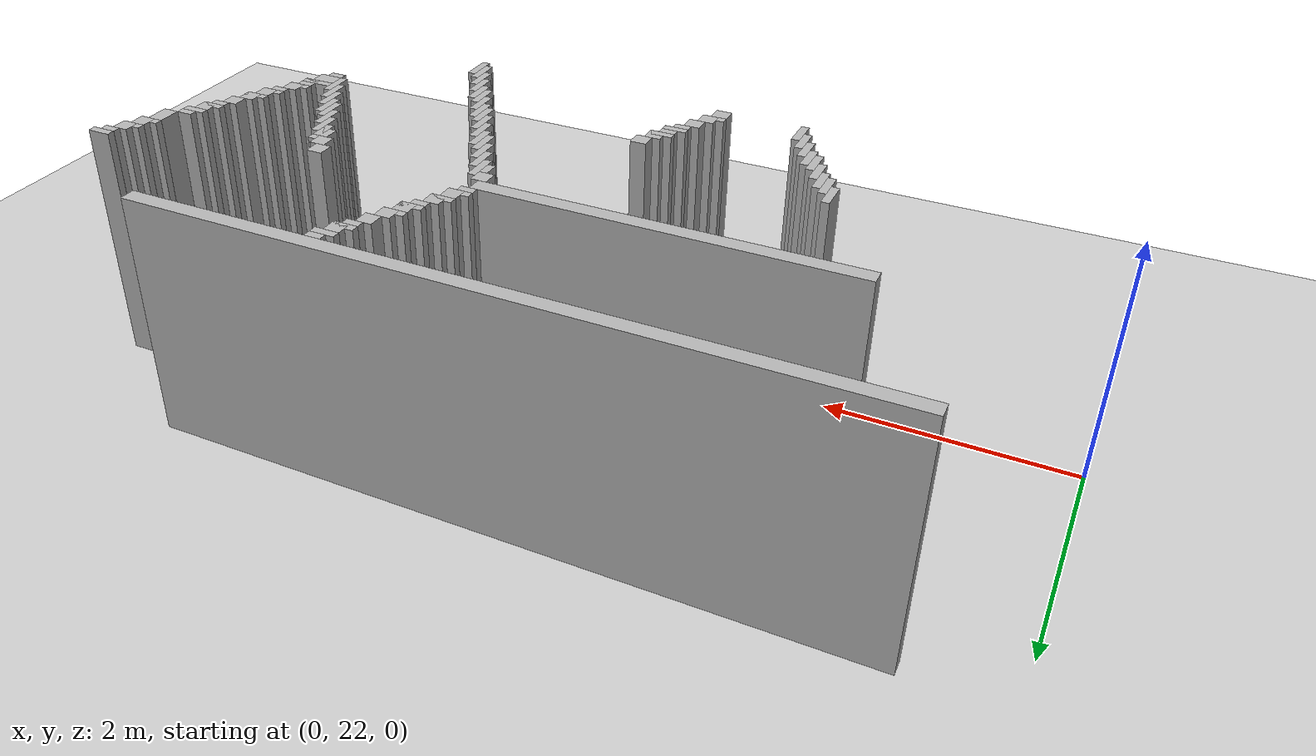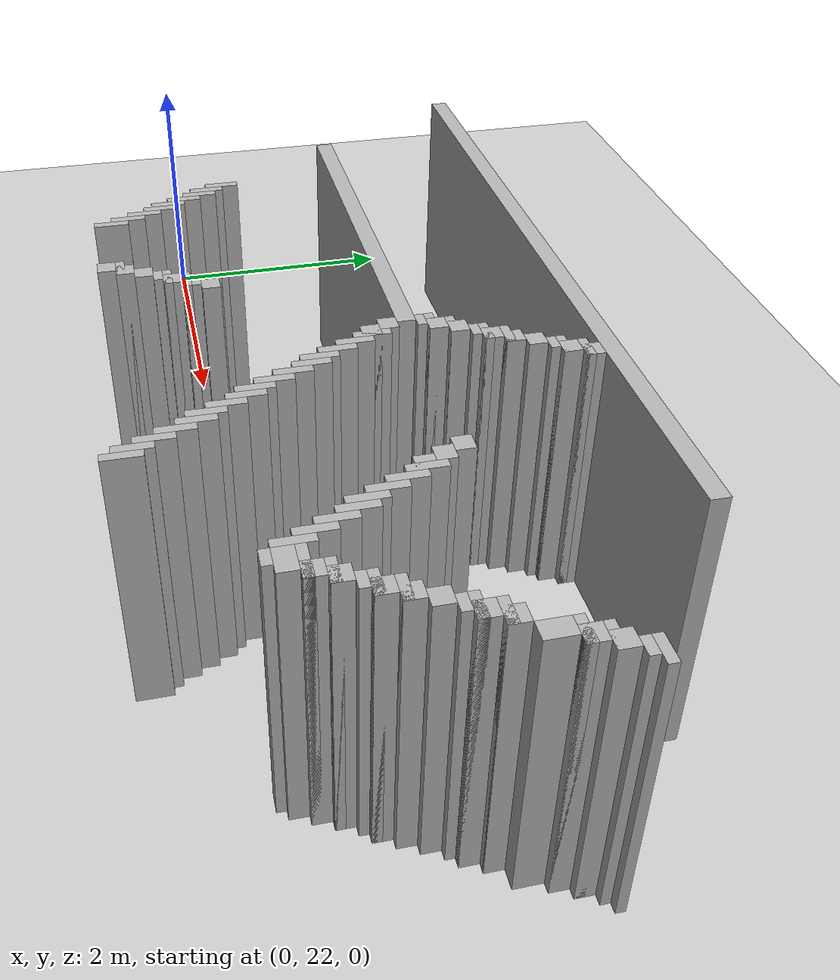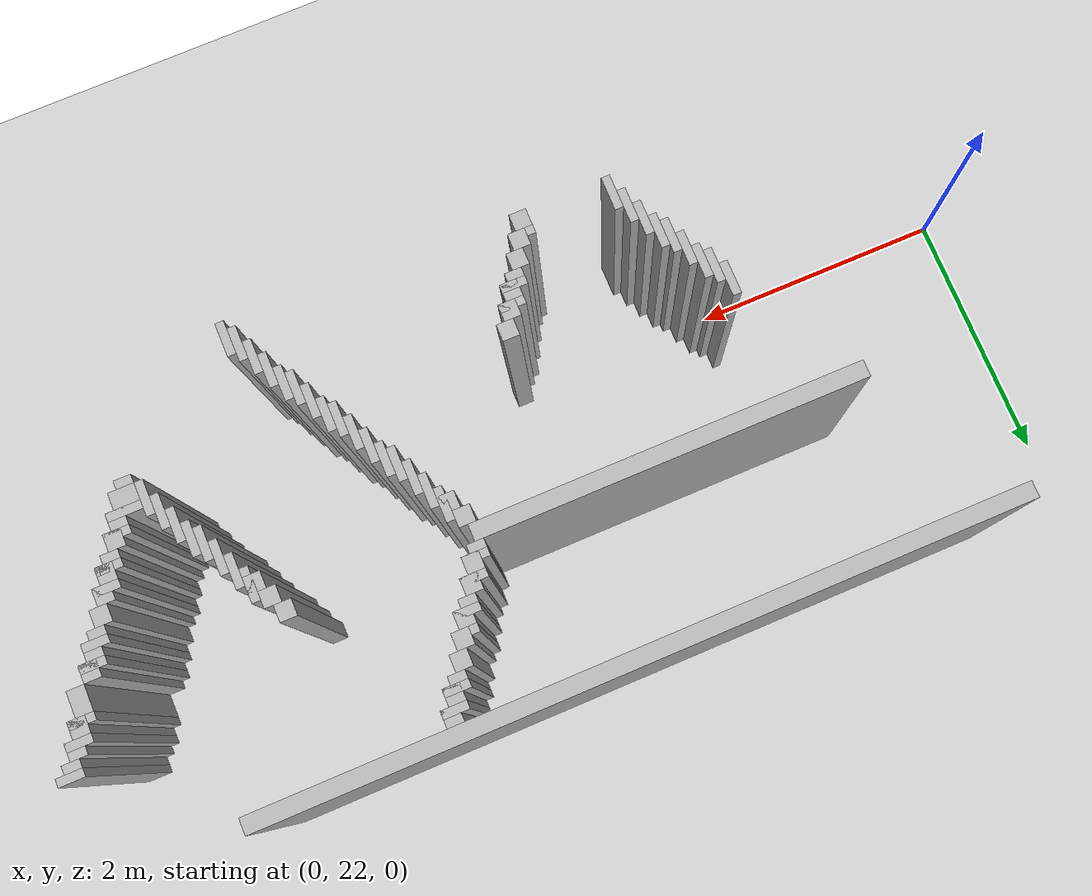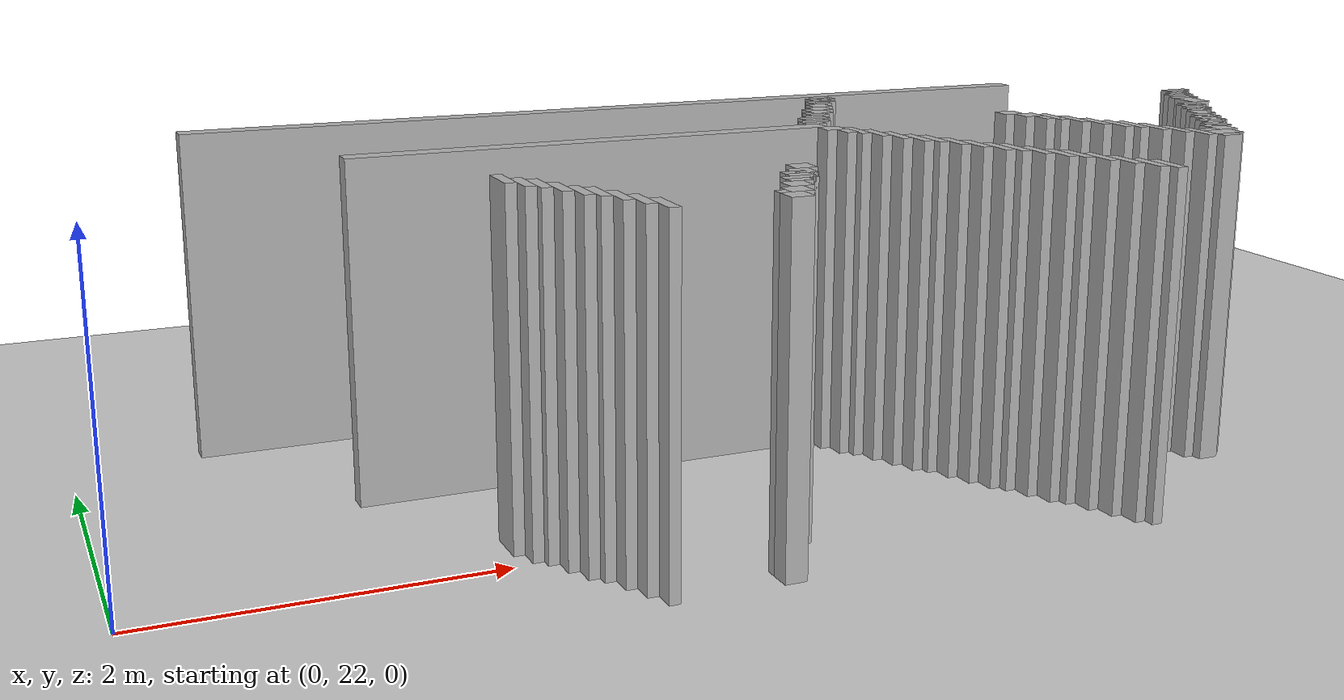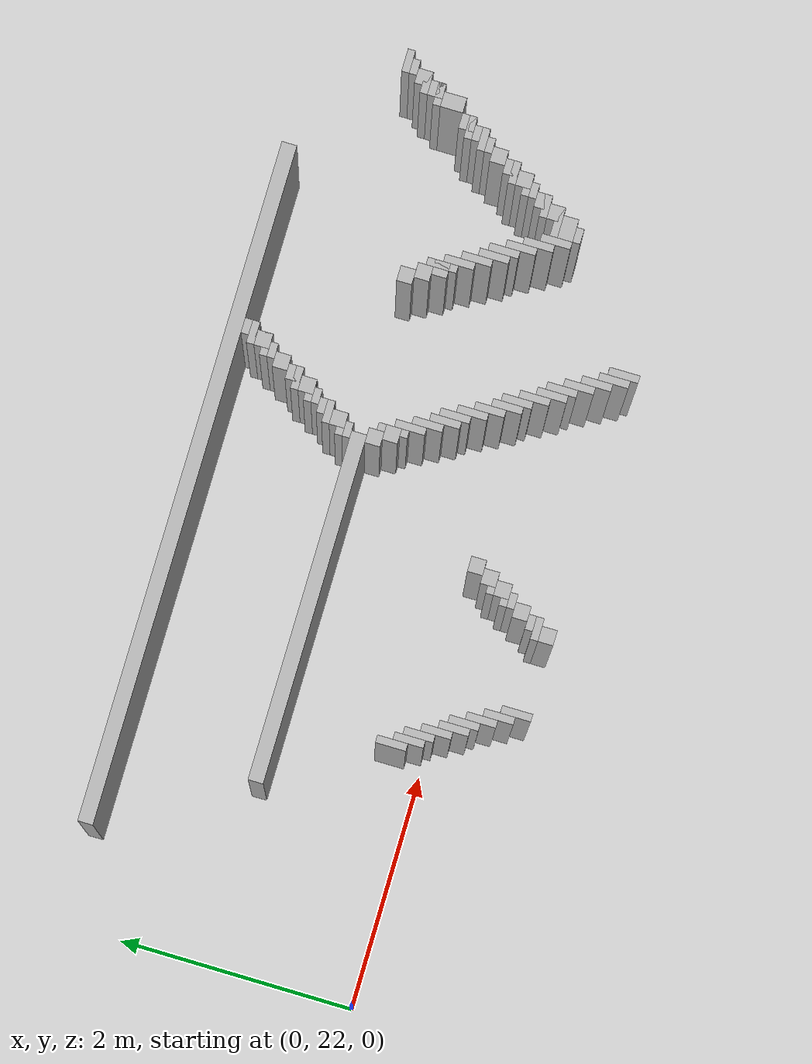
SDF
<sdf version="1.6">
 <world name="slam_world">
  <model name="ground_plane">
   <static>true</static>
   <link name="link">
    <collision name="collision">
     <geometry><plane><normal>0 0 1</normal><size>100 100</size></plane></geometry>
    </collision>
    <visual name="visual">
     <geometry><plane><normal>0 0 1</normal><size>100 100</size></plane></geometry>
     <material>
      <ambient>0.8 0.8 0.8 1</ambient>
      <diffuse>0.8 0.8 0.8 1</diffuse>
      <specular>0.8 0.8 0.8 1</specular>
     </material>
    </visual>
   </link>
  </model>
  <model name="wall_0">
   <static>true</static>
   <pose>3.6382978723404253 24.446808510638295 1.0 0 0 0</pose>
   <link name="link">
    <collision name="collision">
     <geometry><box><size>5.744680851063829 0.1276595744680851 2.0</size></box></geometry>
    </collision>
    <visual name="visual">
     <geometry><box><size>5.744680851063829 0.1276595744680851 2.0</size></box></geometry>
     <material><ambient>0.5 0.5 0.5 1</ambient><diffuse>0.7 0.7 0.7 1</diffuse></material>
    </visual>
   </link>
  </model>
  <model name="wall_3">
   <static>true</static>
   <pose>4.978723404255319 24.319148936170212 1.0 0 0 0</pose>
   <link name="link">
    <collision name="collision">
     <geometry><box><size>0.1276595744680851 0.1276595744680851 2.0</size></box></geometry>
    </collision>
    <visual name="visual">
     <geometry><box><size>0.1276595744680851 0.1276595744680851 2.0</size></box></geometry>
     <material><ambient>0.5 0.5 0.5 1</ambient><diffuse>0.7 0.7 0.7 1</diffuse></material>
    </visual>
   </link>
  </model>
  <model name="wall_8">
   <static>true</static>
   <pose>4.946808510638298 24.28723404255319 1.0 0 0 0</pose>
   <link name="link">
    <collision name="collision">
     <geometry><box><size>0.19148936170212766 0.06382978723404255 2.0</size></box></geometry>
    </collision>
    <visual name="visual">
     <geometry><box><size>0.19148936170212766 0.06382978723404255 2.0</size></box></geometry>
     <material><ambient>0.5 0.5 0.5 1</ambient><diffuse>0.7 0.7 0.7 1</diffuse></material>
    </visual>
   </link>
  </model>
  <model name="wall_13">
   <static>true</static>
   <pose>4.914893617021276 24.191489361702125 1.0 0 0 0</pose>
   <link name="link">
    <collision name="collision">
     <geometry><box><size>0.1276595744680851 0.1276595744680851 2.0</size></box></geometry>
    </collision>
    <visual name="visual">
     <geometry><box><size>0.1276595744680851 0.1276595744680851 2.0</size></box></geometry>
     <material><ambient>0.5 0.5 0.5 1</ambient><diffuse>0.7 0.7 0.7 1</diffuse></material>
    </visual>
   </link>
  </model>
  <model name="wall_18">
   <static>true</static>
   <pose>4.882978723404255 24.159574468085104 1.0 0 0 0</pose>
   <link name="link">
    <collision name="collision">
     <geometry><box><size>0.19148936170212766 0.06382978723404255 2.0</size></box></geometry>
    </collision>
    <visual name="visual">
     <geometry><box><size>0.19148936170212766 0.06382978723404255 2.0</size></box></geometry>
     <material><ambient>0.5 0.5 0.5 1</ambient><diffuse>0.7 0.7 0.7 1</diffuse></material>
    </visual>
   </link>
  </model>
  <model name="wall_23">
   <static>true</static>
   <pose>4.8510638297872335 24.095744680851062 1.0 0 0 0</pose>
   <link name="link">
    <collision name="collision">
     <geometry><box><size>0.1276595744680851 0.06382978723404255 2.0</size></box></geometry>
    </collision>
    <visual name="visual">
     <geometry><box><size>0.1276595744680851 0.06382978723404255 2.0</size></box></geometry>
     <material><ambient>0.5 0.5 0.5 1</ambient><diffuse>0.7 0.7 0.7 1</diffuse></material>
    </visual>
   </link>
  </model>
  <model name="wall_27">
   <static>true</static>
   <pose>4.787234042553191 23.999999999999996 1.0 0 0 0</pose>
   <link name="link">
    <collision name="collision">
     <geometry><box><size>0.1276595744680851 0.1276595744680851 2.0</size></box></geometry>
    </collision>
    <visual name="visual">
     <geometry><box><size>0.1276595744680851 0.1276595744680851 2.0</size></box></geometry>
     <material><ambient>0.5 0.5 0.5 1</ambient><diffuse>0.7 0.7 0.7 1</diffuse></material>
    </visual>
   </link>
  </model>
  <model name="wall_32">
   <static>true</static>
   <pose>4.723404255319148 23.872340425531913 1.0 0 0 0</pose>
   <link name="link">
    <collision name="collision">
     <geometry><box><size>0.1276595744680851 0.1276595744680851 2.0</size></box></geometry>
    </collision>
    <visual name="visual">
     <geometry><box><size>0.1276595744680851 0.1276595744680851 2.0</size></box></geometry>
     <material><ambient>0.5 0.5 0.5 1</ambient><diffuse>0.7 0.7 0.7 1</diffuse></material>
    </visual>
   </link>
  </model>
  <model name="wall_37">
   <static>true</static>
   <pose>4.691489361702128 23.840425531914892 1.0 0 0 0</pose>
   <link name="link">
    <collision name="collision">
     <geometry><box><size>0.19148936170212766 0.06382978723404255 2.0</size></box></geometry>
    </collision>
    <visual name="visual">
     <geometry><box><size>0.19148936170212766 0.06382978723404255 2.0</size></box></geometry>
     <material><ambient>0.5 0.5 0.5 1</ambient><diffuse>0.7 0.7 0.7 1</diffuse></material>
    </visual>
   </link>
  </model>
  <model name="wall_42">
   <static>true</static>
   <pose>4.659574468085106 23.744680851063826 1.0 0 0 0</pose>
   <link name="link">
    <collision name="collision">
     <geometry><box><size>0.1276595744680851 0.1276595744680851 2.0</size></box></geometry>
    </collision>
    <visual name="visual">
     <geometry><box><size>0.1276595744680851 0.1276595744680851 2.0</size></box></geometry>
     <material><ambient>0.5 0.5 0.5 1</ambient><diffuse>0.7 0.7 0.7 1</diffuse></material>
    </visual>
   </link>
  </model>
  <model name="wall_46">
   <static>true</static>
   <pose>4.627659574468085 23.712765957446805 1.0 0 0 0</pose>
   <link name="link">
    <collision name="collision">
     <geometry><box><size>0.19148936170212766 0.06382978723404255 2.0</size></box></geometry>
    </collision>
    <visual name="visual">
     <geometry><box><size>0.19148936170212766 0.06382978723404255 2.0</size></box></geometry>
     <material><ambient>0.5 0.5 0.5 1</ambient><diffuse>0.7 0.7 0.7 1</diffuse></material>
    </visual>
   </link>
  </model>
  <model name="wall_47">
   <static>true</static>
   <pose>7.436170212765957 23.712765957446805 1.0 0 0 0</pose>
   <link name="link">
    <collision name="collision">
     <geometry><box><size>0.19148936170212766 0.06382978723404255 2.0</size></box></geometry>
    </collision>
    <visual name="visual">
     <geometry><box><size>0.19148936170212766 0.06382978723404255 2.0</size></box></geometry>
     <material><ambient>0.5 0.5 0.5 1</ambient><diffuse>0.7 0.7 0.7 1</diffuse></material>
    </visual>
   </link>
  </model>
  <model name="wall_51">
   <static>true</static>
   <pose>4.595744680851063 23.648936170212764 1.0 0 0 0</pose>
   <link name="link">
    <collision name="collision">
     <geometry><box><size>0.1276595744680851 0.06382978723404255 2.0</size></box></geometry>
    </collision>
    <visual name="visual">
     <geometry><box><size>0.1276595744680851 0.06382978723404255 2.0</size></box></geometry>
     <material><ambient>0.5 0.5 0.5 1</ambient><diffuse>0.7 0.7 0.7 1</diffuse></material>
    </visual>
   </link>
  </model>
  <model name="wall_52">
   <static>true</static>
   <pose>7.404255319148936 23.648936170212764 1.0 0 0 0</pose>
   <link name="link">
    <collision name="collision">
     <geometry><box><size>0.1276595744680851 0.06382978723404255 2.0</size></box></geometry>
    </collision>
    <visual name="visual">
     <geometry><box><size>0.1276595744680851 0.06382978723404255 2.0</size></box></geometry>
     <material><ambient>0.5 0.5 0.5 1</ambient><diffuse>0.7 0.7 0.7 1</diffuse></material>
    </visual>
   </link>
  </model>
  <model name="wall_55">
   <static>true</static>
   <pose>4.531914893617021 23.5531914893617 1.0 0 0 0</pose>
   <link name="link">
    <collision name="collision">
     <geometry><box><size>0.1276595744680851 0.1276595744680851 2.0</size></box></geometry>
    </collision>
    <visual name="visual">
     <geometry><box><size>0.1276595744680851 0.1276595744680851 2.0</size></box></geometry>
     <material><ambient>0.5 0.5 0.5 1</ambient><diffuse>0.7 0.7 0.7 1</diffuse></material>
    </visual>
   </link>
  </model>
  <model name="wall_56">
   <static>true</static>
   <pose>7.340425531914893 23.5531914893617 1.0 0 0 0</pose>
   <link name="link">
    <collision name="collision">
     <geometry><box><size>0.1276595744680851 0.1276595744680851 2.0</size></box></geometry>
    </collision>
    <visual name="visual">
     <geometry><box><size>0.1276595744680851 0.1276595744680851 2.0</size></box></geometry>
     <material><ambient>0.5 0.5 0.5 1</ambient><diffuse>0.7 0.7 0.7 1</diffuse></material>
    </visual>
   </link>
  </model>
  <model name="wall_60">
   <static>true</static>
   <pose>4.5 23.52127659574468 1.0 0 0 0</pose>
   <link name="link">
    <collision name="collision">
     <geometry><box><size>0.19148936170212766 0.06382978723404255 2.0</size></box></geometry>
    </collision>
    <visual name="visual">
     <geometry><box><size>0.19148936170212766 0.06382978723404255 2.0</size></box></geometry>
     <material><ambient>0.5 0.5 0.5 1</ambient><diffuse>0.7 0.7 0.7 1</diffuse></material>
    </visual>
   </link>
  </model>
  <model name="wall_61">
   <static>true</static>
   <pose>7.3085106382978715 23.52127659574468 1.0 0 0 0</pose>
   <link name="link">
    <collision name="collision">
     <geometry><box><size>0.19148936170212766 0.06382978723404255 2.0</size></box></geometry>
    </collision>
    <visual name="visual">
     <geometry><box><size>0.19148936170212766 0.06382978723404255 2.0</size></box></geometry>
     <material><ambient>0.5 0.5 0.5 1</ambient><diffuse>0.7 0.7 0.7 1</diffuse></material>
    </visual>
   </link>
  </model>
  <model name="wall_65">
   <static>true</static>
   <pose>4.468085106382978 23.425531914893615 1.0 0 0 0</pose>
   <link name="link">
    <collision name="collision">
     <geometry><box><size>0.1276595744680851 0.1276595744680851 2.0</size></box></geometry>
    </collision>
    <visual name="visual">
     <geometry><box><size>0.1276595744680851 0.1276595744680851 2.0</size></box></geometry>
     <material><ambient>0.5 0.5 0.5 1</ambient><diffuse>0.7 0.7 0.7 1</diffuse></material>
    </visual>
   </link>
  </model>
  <model name="wall_66">
   <static>true</static>
   <pose>7.276595744680851 23.425531914893615 1.0 0 0 0</pose>
   <link name="link">
    <collision name="collision">
     <geometry><box><size>0.1276595744680851 0.1276595744680851 2.0</size></box></geometry>
    </collision>
    <visual name="visual">
     <geometry><box><size>0.1276595744680851 0.1276595744680851 2.0</size></box></geometry>
     <material><ambient>0.5 0.5 0.5 1</ambient><diffuse>0.7 0.7 0.7 1</diffuse></material>
    </visual>
   </link>
  </model>
  <model name="wall_69">
   <static>true</static>
   <pose>4.4361702127659575 23.393617021276594 1.0 0 0 0</pose>
   <link name="link">
    <collision name="collision">
     <geometry><box><size>0.19148936170212766 0.06382978723404255 2.0</size></box></geometry>
    </collision>
    <visual name="visual">
     <geometry><box><size>0.19148936170212766 0.06382978723404255 2.0</size></box></geometry>
     <material><ambient>0.5 0.5 0.5 1</ambient><diffuse>0.7 0.7 0.7 1</diffuse></material>
    </visual>
   </link>
  </model>
  <model name="wall_70">
   <static>true</static>
   <pose>7.244680851063829 23.393617021276594 1.0 0 0 0</pose>
   <link name="link">
    <collision name="collision">
     <geometry><box><size>0.19148936170212766 0.06382978723404255 2.0</size></box></geometry>
    </collision>
    <visual name="visual">
     <geometry><box><size>0.19148936170212766 0.06382978723404255 2.0</size></box></geometry>
     <material><ambient>0.5 0.5 0.5 1</ambient><diffuse>0.7 0.7 0.7 1</diffuse></material>
    </visual>
   </link>
  </model>
  <model name="wall_74">
   <static>true</static>
   <pose>4.404255319148936 23.329787234042552 1.0 0 0 0</pose>
   <link name="link">
    <collision name="collision">
     <geometry><box><size>0.1276595744680851 0.06382978723404255 2.0</size></box></geometry>
    </collision>
    <visual name="visual">
     <geometry><box><size>0.1276595744680851 0.06382978723404255 2.0</size></box></geometry>
     <material><ambient>0.5 0.5 0.5 1</ambient><diffuse>0.7 0.7 0.7 1</diffuse></material>
    </visual>
   </link>
  </model>
  <model name="wall_75">
   <static>true</static>
   <pose>7.212765957446808 23.26595744680851 1.0 0 0 0</pose>
   <link name="link">
    <collision name="collision">
     <geometry><box><size>0.1276595744680851 0.19148936170212766 2.0</size></box></geometry>
    </collision>
    <visual name="visual">
     <geometry><box><size>0.1276595744680851 0.19148936170212766 2.0</size></box></geometry>
     <material><ambient>0.5 0.5 0.5 1</ambient><diffuse>0.7 0.7 0.7 1</diffuse></material>
    </visual>
   </link>
  </model>
  <model name="wall_78">
   <static>true</static>
   <pose>2.936170212765957 23.234042553191486 1.0 0 0 0</pose>
   <link name="link">
    <collision name="collision">
     <geometry><box><size>2.936170212765957 0.1276595744680851 2.0</size></box></geometry>
    </collision>
    <visual name="visual">
     <geometry><box><size>2.936170212765957 0.1276595744680851 2.0</size></box></geometry>
     <material><ambient>0.5 0.5 0.5 1</ambient><diffuse>0.7 0.7 0.7 1</diffuse></material>
    </visual>
   </link>
  </model>
  <model name="wall_79">
   <static>true</static>
   <pose>5.744680851063829 23.234042553191486 1.0 0 0 0</pose>
   <link name="link">
    <collision name="collision">
     <geometry><box><size>0.1276595744680851 0.1276595744680851 2.0</size></box></geometry>
    </collision>
    <visual name="visual">
     <geometry><box><size>0.1276595744680851 0.1276595744680851 2.0</size></box></geometry>
     <material><ambient>0.5 0.5 0.5 1</ambient><diffuse>0.7 0.7 0.7 1</diffuse></material>
    </visual>
   </link>
  </model>
  <model name="wall_86">
   <static>true</static>
   <pose>4.404255319148936 23.106382978723403 1.0 0 0 0</pose>
   <link name="link">
    <collision name="collision">
     <geometry><box><size>0.1276595744680851 0.1276595744680851 2.0</size></box></geometry>
    </collision>
    <visual name="visual">
     <geometry><box><size>0.1276595744680851 0.1276595744680851 2.0</size></box></geometry>
     <material><ambient>0.5 0.5 0.5 1</ambient><diffuse>0.7 0.7 0.7 1</diffuse></material>
    </visual>
   </link>
  </model>
  <model name="wall_87">
   <static>true</static>
   <pose>5.8085106382978715 23.106382978723403 1.0 0 0 0</pose>
   <link name="link">
    <collision name="collision">
     <geometry><box><size>0.1276595744680851 0.1276595744680851 2.0</size></box></geometry>
    </collision>
    <visual name="visual">
     <geometry><box><size>0.1276595744680851 0.1276595744680851 2.0</size></box></geometry>
     <material><ambient>0.5 0.5 0.5 1</ambient><diffuse>0.7 0.7 0.7 1</diffuse></material>
    </visual>
   </link>
  </model>
  <model name="wall_88">
   <static>true</static>
   <pose>7.085106382978723 23.106382978723403 1.0 0 0 0</pose>
   <link name="link">
    <collision name="collision">
     <geometry><box><size>0.1276595744680851 0.1276595744680851 2.0</size></box></geometry>
    </collision>
    <visual name="visual">
     <geometry><box><size>0.1276595744680851 0.1276595744680851 2.0</size></box></geometry>
     <material><ambient>0.5 0.5 0.5 1</ambient><diffuse>0.7 0.7 0.7 1</diffuse></material>
    </visual>
   </link>
  </model>
  <model name="wall_96">
   <static>true</static>
   <pose>4.5 22.978723404255316 1.0 0 0 0</pose>
   <link name="link">
    <collision name="collision">
     <geometry><box><size>0.06382978723404255 0.2553191489361702 2.0</size></box></geometry>
    </collision>
    <visual name="visual">
     <geometry><box><size>0.06382978723404255 0.2553191489361702 2.0</size></box></geometry>
     <material><ambient>0.5 0.5 0.5 1</ambient><diffuse>0.7 0.7 0.7 1</diffuse></material>
    </visual>
   </link>
  </model>
  <model name="wall_97">
   <static>true</static>
   <pose>5.904255319148936 22.978723404255316 1.0 0 0 0</pose>
   <link name="link">
    <collision name="collision">
     <geometry><box><size>0.06382978723404255 0.2553191489361702 2.0</size></box></geometry>
    </collision>
    <visual name="visual">
     <geometry><box><size>0.06382978723404255 0.2553191489361702 2.0</size></box></geometry>
     <material><ambient>0.5 0.5 0.5 1</ambient><diffuse>0.7 0.7 0.7 1</diffuse></material>
    </visual>
   </link>
  </model>
  <model name="wall_98">
   <static>true</static>
   <pose>7.053191489361701 23.074468085106382 1.0 0 0 0</pose>
   <link name="link">
    <collision name="collision">
     <geometry><box><size>0.19148936170212766 0.06382978723404255 2.0</size></box></geometry>
    </collision>
    <visual name="visual">
     <geometry><box><size>0.19148936170212766 0.06382978723404255 2.0</size></box></geometry>
     <material><ambient>0.5 0.5 0.5 1</ambient><diffuse>0.7 0.7 0.7 1</diffuse></material>
    </visual>
   </link>
  </model>
  <model name="wall_106">
   <static>true</static>
   <pose>4.468085106382978 22.978723404255316 1.0 0 0 0</pose>
   <link name="link">
    <collision name="collision">
     <geometry><box><size>0.1276595744680851 0.1276595744680851 2.0</size></box></geometry>
    </collision>
    <visual name="visual">
     <geometry><box><size>0.1276595744680851 0.1276595744680851 2.0</size></box></geometry>
     <material><ambient>0.5 0.5 0.5 1</ambient><diffuse>0.7 0.7 0.7 1</diffuse></material>
    </visual>
   </link>
  </model>
  <model name="wall_107">
   <static>true</static>
   <pose>5.872340425531914 22.978723404255316 1.0 0 0 0</pose>
   <link name="link">
    <collision name="collision">
     <geometry><box><size>0.1276595744680851 0.1276595744680851 2.0</size></box></geometry>
    </collision>
    <visual name="visual">
     <geometry><box><size>0.1276595744680851 0.1276595744680851 2.0</size></box></geometry>
     <material><ambient>0.5 0.5 0.5 1</ambient><diffuse>0.7 0.7 0.7 1</diffuse></material>
    </visual>
   </link>
  </model>
  <model name="wall_108">
   <static>true</static>
   <pose>7.0212765957446805 22.978723404255316 1.0 0 0 0</pose>
   <link name="link">
    <collision name="collision">
     <geometry><box><size>0.1276595744680851 0.1276595744680851 2.0</size></box></geometry>
    </collision>
    <visual name="visual">
     <geometry><box><size>0.1276595744680851 0.1276595744680851 2.0</size></box></geometry>
     <material><ambient>0.5 0.5 0.5 1</ambient><diffuse>0.7 0.7 0.7 1</diffuse></material>
    </visual>
   </link>
  </model>
  <model name="wall_116">
   <static>true</static>
   <pose>4.5638297872340425 22.851063829787233 1.0 0 0 0</pose>
   <link name="link">
    <collision name="collision">
     <geometry><box><size>0.06382978723404255 0.2553191489361702 2.0</size></box></geometry>
    </collision>
    <visual name="visual">
     <geometry><box><size>0.06382978723404255 0.2553191489361702 2.0</size></box></geometry>
     <material><ambient>0.5 0.5 0.5 1</ambient><diffuse>0.7 0.7 0.7 1</diffuse></material>
    </visual>
   </link>
  </model>
  <model name="wall_117">
   <static>true</static>
   <pose>5.968085106382978 22.851063829787233 1.0 0 0 0</pose>
   <link name="link">
    <collision name="collision">
     <geometry><box><size>0.06382978723404255 0.2553191489361702 2.0</size></box></geometry>
    </collision>
    <visual name="visual">
     <geometry><box><size>0.06382978723404255 0.2553191489361702 2.0</size></box></geometry>
     <material><ambient>0.5 0.5 0.5 1</ambient><diffuse>0.7 0.7 0.7 1</diffuse></material>
    </visual>
   </link>
  </model>
  <model name="wall_118">
   <static>true</static>
   <pose>6.989361702127659 22.946808510638295 1.0 0 0 0</pose>
   <link name="link">
    <collision name="collision">
     <geometry><box><size>0.19148936170212766 0.06382978723404255 2.0</size></box></geometry>
    </collision>
    <visual name="visual">
     <geometry><box><size>0.19148936170212766 0.06382978723404255 2.0</size></box></geometry>
     <material><ambient>0.5 0.5 0.5 1</ambient><diffuse>0.7 0.7 0.7 1</diffuse></material>
    </visual>
   </link>
  </model>
  <model name="wall_124">
   <static>true</static>
   <pose>6.957446808510638 22.882978723404253 1.0 0 0 0</pose>
   <link name="link">
    <collision name="collision">
     <geometry><box><size>0.1276595744680851 0.06382978723404255 2.0</size></box></geometry>
    </collision>
    <visual name="visual">
     <geometry><box><size>0.1276595744680851 0.06382978723404255 2.0</size></box></geometry>
     <material><ambient>0.5 0.5 0.5 1</ambient><diffuse>0.7 0.7 0.7 1</diffuse></material>
    </visual>
   </link>
  </model>
  <model name="wall_130">
   <static>true</static>
   <pose>4.627659574468085 22.723404255319146 1.0 0 0 0</pose>
   <link name="link">
    <collision name="collision">
     <geometry><box><size>0.06382978723404255 0.2553191489361702 2.0</size></box></geometry>
    </collision>
    <visual name="visual">
     <geometry><box><size>0.06382978723404255 0.2553191489361702 2.0</size></box></geometry>
     <material><ambient>0.5 0.5 0.5 1</ambient><diffuse>0.7 0.7 0.7 1</diffuse></material>
    </visual>
   </link>
  </model>
  <model name="wall_131">
   <static>true</static>
   <pose>6.031914893617021 22.723404255319146 1.0 0 0 0</pose>
   <link name="link">
    <collision name="collision">
     <geometry><box><size>0.06382978723404255 0.2553191489361702 2.0</size></box></geometry>
    </collision>
    <visual name="visual">
     <geometry><box><size>0.06382978723404255 0.2553191489361702 2.0</size></box></geometry>
     <material><ambient>0.5 0.5 0.5 1</ambient><diffuse>0.7 0.7 0.7 1</diffuse></material>
    </visual>
   </link>
  </model>
  <model name="wall_132">
   <static>true</static>
   <pose>6.8936170212765955 22.78723404255319 1.0 0 0 0</pose>
   <link name="link">
    <collision name="collision">
     <geometry><box><size>0.1276595744680851 0.1276595744680851 2.0</size></box></geometry>
    </collision>
    <visual name="visual">
     <geometry><box><size>0.1276595744680851 0.1276595744680851 2.0</size></box></geometry>
     <material><ambient>0.5 0.5 0.5 1</ambient><diffuse>0.7 0.7 0.7 1</diffuse></material>
    </visual>
   </link>
  </model>
  <model name="wall_140">
   <static>true</static>
   <pose>4.691489361702128 22.595744680851062 1.0 0 0 0</pose>
   <link name="link">
    <collision name="collision">
     <geometry><box><size>0.06382978723404255 0.2553191489361702 2.0</size></box></geometry>
    </collision>
    <visual name="visual">
     <geometry><box><size>0.06382978723404255 0.2553191489361702 2.0</size></box></geometry>
     <material><ambient>0.5 0.5 0.5 1</ambient><diffuse>0.7 0.7 0.7 1</diffuse></material>
    </visual>
   </link>
  </model>
  <model name="wall_141">
   <static>true</static>
   <pose>6.095744680851063 22.595744680851062 1.0 0 0 0</pose>
   <link name="link">
    <collision name="collision">
     <geometry><box><size>0.06382978723404255 0.2553191489361702 2.0</size></box></geometry>
    </collision>
    <visual name="visual">
     <geometry><box><size>0.06382978723404255 0.2553191489361702 2.0</size></box></geometry>
     <material><ambient>0.5 0.5 0.5 1</ambient><diffuse>0.7 0.7 0.7 1</diffuse></material>
    </visual>
   </link>
  </model>
  <model name="wall_142">
   <static>true</static>
   <pose>6.829787234042553 22.659574468085104 1.0 0 0 0</pose>
   <link name="link">
    <collision name="collision">
     <geometry><box><size>0.1276595744680851 0.1276595744680851 2.0</size></box></geometry>
    </collision>
    <visual name="visual">
     <geometry><box><size>0.1276595744680851 0.1276595744680851 2.0</size></box></geometry>
     <material><ambient>0.5 0.5 0.5 1</ambient><diffuse>0.7 0.7 0.7 1</diffuse></material>
    </visual>
   </link>
  </model>
  <model name="wall_150">
   <static>true</static>
   <pose>4.75531914893617 22.53191489361702 1.0 0 0 0</pose>
   <link name="link">
    <collision name="collision">
     <geometry><box><size>0.06382978723404255 0.2553191489361702 2.0</size></box></geometry>
    </collision>
    <visual name="visual">
     <geometry><box><size>0.06382978723404255 0.2553191489361702 2.0</size></box></geometry>
     <material><ambient>0.5 0.5 0.5 1</ambient><diffuse>0.7 0.7 0.7 1</diffuse></material>
    </visual>
   </link>
  </model>
  <model name="wall_151">
   <static>true</static>
   <pose>6.159574468085106 22.53191489361702 1.0 0 0 0</pose>
   <link name="link">
    <collision name="collision">
     <geometry><box><size>0.06382978723404255 0.2553191489361702 2.0</size></box></geometry>
    </collision>
    <visual name="visual">
     <geometry><box><size>0.06382978723404255 0.2553191489361702 2.0</size></box></geometry>
     <material><ambient>0.5 0.5 0.5 1</ambient><diffuse>0.7 0.7 0.7 1</diffuse></material>
    </visual>
   </link>
  </model>
  <model name="wall_152">
   <static>true</static>
   <pose>6.797872340425531 22.627659574468083 1.0 0 0 0</pose>
   <link name="link">
    <collision name="collision">
     <geometry><box><size>0.19148936170212766 0.06382978723404255 2.0</size></box></geometry>
    </collision>
    <visual name="visual">
     <geometry><box><size>0.19148936170212766 0.06382978723404255 2.0</size></box></geometry>
     <material><ambient>0.5 0.5 0.5 1</ambient><diffuse>0.7 0.7 0.7 1</diffuse></material>
    </visual>
   </link>
  </model>
  <model name="wall_158">
   <static>true</static>
   <pose>6.76595744680851 22.53191489361702 1.0 0 0 0</pose>
   <link name="link">
    <collision name="collision">
     <geometry><box><size>0.1276595744680851 0.1276595744680851 2.0</size></box></geometry>
    </collision>
    <visual name="visual">
     <geometry><box><size>0.1276595744680851 0.1276595744680851 2.0</size></box></geometry>
     <material><ambient>0.5 0.5 0.5 1</ambient><diffuse>0.7 0.7 0.7 1</diffuse></material>
    </visual>
   </link>
  </model>
  <model name="wall_164">
   <static>true</static>
   <pose>4.819148936170213 22.404255319148934 1.0 0 0 0</pose>
   <link name="link">
    <collision name="collision">
     <geometry><box><size>0.06382978723404255 0.2553191489361702 2.0</size></box></geometry>
    </collision>
    <visual name="visual">
     <geometry><box><size>0.06382978723404255 0.2553191489361702 2.0</size></box></geometry>
     <material><ambient>0.5 0.5 0.5 1</ambient><diffuse>0.7 0.7 0.7 1</diffuse></material>
    </visual>
   </link>
  </model>
  <model name="wall_165">
   <static>true</static>
   <pose>6.223404255319148 22.404255319148934 1.0 0 0 0</pose>
   <link name="link">
    <collision name="collision">
     <geometry><box><size>0.06382978723404255 0.2553191489361702 2.0</size></box></geometry>
    </collision>
    <visual name="visual">
     <geometry><box><size>0.06382978723404255 0.2553191489361702 2.0</size></box></geometry>
     <material><ambient>0.5 0.5 0.5 1</ambient><diffuse>0.7 0.7 0.7 1</diffuse></material>
    </visual>
   </link>
  </model>
  <model name="wall_166">
   <static>true</static>
   <pose>6.734042553191489 22.5 1.0 0 0 0</pose>
   <link name="link">
    <collision name="collision">
     <geometry><box><size>0.19148936170212766 0.06382978723404255 2.0</size></box></geometry>
    </collision>
    <visual name="visual">
     <geometry><box><size>0.19148936170212766 0.06382978723404255 2.0</size></box></geometry>
     <material><ambient>0.5 0.5 0.5 1</ambient><diffuse>0.7 0.7 0.7 1</diffuse></material>
    </visual>
   </link>
  </model>
  <model name="wall_172">
   <static>true</static>
   <pose>6.702127659574468 22.436170212765955 1.0 0 0 0</pose>
   <link name="link">
    <collision name="collision">
     <geometry><box><size>0.1276595744680851 0.06382978723404255 2.0</size></box></geometry>
    </collision>
    <visual name="visual">
     <geometry><box><size>0.1276595744680851 0.06382978723404255 2.0</size></box></geometry>
     <material><ambient>0.5 0.5 0.5 1</ambient><diffuse>0.7 0.7 0.7 1</diffuse></material>
    </visual>
   </link>
  </model>
  <model name="wall_177">
   <static>true</static>
   <pose>2.074468085106383 22.27659574468085 1.0 0 0 0</pose>
   <link name="link">
    <collision name="collision">
     <geometry><box><size>0.06382978723404255 0.2553191489361702 2.0</size></box></geometry>
    </collision>
    <visual name="visual">
     <geometry><box><size>0.06382978723404255 0.2553191489361702 2.0</size></box></geometry>
     <material><ambient>0.5 0.5 0.5 1</ambient><diffuse>0.7 0.7 0.7 1</diffuse></material>
    </visual>
   </link>
  </model>
  <model name="wall_178">
   <static>true</static>
   <pose>4.882978723404255 22.27659574468085 1.0 0 0 0</pose>
   <link name="link">
    <collision name="collision">
     <geometry><box><size>0.06382978723404255 0.2553191489361702 2.0</size></box></geometry>
    </collision>
    <visual name="visual">
     <geometry><box><size>0.06382978723404255 0.2553191489361702 2.0</size></box></geometry>
     <material><ambient>0.5 0.5 0.5 1</ambient><diffuse>0.7 0.7 0.7 1</diffuse></material>
    </visual>
   </link>
  </model>
  <model name="wall_179">
   <static>true</static>
   <pose>6.287234042553191 22.27659574468085 1.0 0 0 0</pose>
   <link name="link">
    <collision name="collision">
     <geometry><box><size>0.06382978723404255 0.2553191489361702 2.0</size></box></geometry>
    </collision>
    <visual name="visual">
     <geometry><box><size>0.06382978723404255 0.2553191489361702 2.0</size></box></geometry>
     <material><ambient>0.5 0.5 0.5 1</ambient><diffuse>0.7 0.7 0.7 1</diffuse></material>
    </visual>
   </link>
  </model>
  <model name="wall_180">
   <static>true</static>
   <pose>6.638297872340425 22.340425531914892 1.0 0 0 0</pose>
   <link name="link">
    <collision name="collision">
     <geometry><box><size>0.1276595744680851 0.1276595744680851 2.0</size></box></geometry>
    </collision>
    <visual name="visual">
     <geometry><box><size>0.1276595744680851 0.1276595744680851 2.0</size></box></geometry>
     <material><ambient>0.5 0.5 0.5 1</ambient><diffuse>0.7 0.7 0.7 1</diffuse></material>
    </visual>
   </link>
  </model>
  <model name="wall_186">
   <static>true</static>
   <pose>6.606382978723404 22.30851063829787 1.0 0 0 0</pose>
   <link name="link">
    <collision name="collision">
     <geometry><box><size>0.19148936170212766 0.06382978723404255 2.0</size></box></geometry>
    </collision>
    <visual name="visual">
     <geometry><box><size>0.19148936170212766 0.06382978723404255 2.0</size></box></geometry>
     <material><ambient>0.5 0.5 0.5 1</ambient><diffuse>0.7 0.7 0.7 1</diffuse></material>
    </visual>
   </link>
  </model>
  <model name="wall_191">
   <static>true</static>
   <pose>2.1382978723404253 22.148936170212764 1.0 0 0 0</pose>
   <link name="link">
    <collision name="collision">
     <geometry><box><size>0.06382978723404255 0.2553191489361702 2.0</size></box></geometry>
    </collision>
    <visual name="visual">
     <geometry><box><size>0.06382978723404255 0.2553191489361702 2.0</size></box></geometry>
     <material><ambient>0.5 0.5 0.5 1</ambient><diffuse>0.7 0.7 0.7 1</diffuse></material>
    </visual>
   </link>
  </model>
  <model name="wall_192">
   <static>true</static>
   <pose>4.946808510638298 22.148936170212764 1.0 0 0 0</pose>
   <link name="link">
    <collision name="collision">
     <geometry><box><size>0.06382978723404255 0.2553191489361702 2.0</size></box></geometry>
    </collision>
    <visual name="visual">
     <geometry><box><size>0.06382978723404255 0.2553191489361702 2.0</size></box></geometry>
     <material><ambient>0.5 0.5 0.5 1</ambient><diffuse>0.7 0.7 0.7 1</diffuse></material>
    </visual>
   </link>
  </model>
  <model name="wall_193">
   <static>true</static>
   <pose>6.3510638297872335 22.148936170212764 1.0 0 0 0</pose>
   <link name="link">
    <collision name="collision">
     <geometry><box><size>0.06382978723404255 0.2553191489361702 2.0</size></box></geometry>
    </collision>
    <visual name="visual">
     <geometry><box><size>0.06382978723404255 0.2553191489361702 2.0</size></box></geometry>
     <material><ambient>0.5 0.5 0.5 1</ambient><diffuse>0.7 0.7 0.7 1</diffuse></material>
    </visual>
   </link>
  </model>
  <model name="wall_194">
   <static>true</static>
   <pose>6.574468085106383 22.212765957446805 1.0 0 0 0</pose>
   <link name="link">
    <collision name="collision">
     <geometry><box><size>0.1276595744680851 0.1276595744680851 2.0</size></box></geometry>
    </collision>
    <visual name="visual">
     <geometry><box><size>0.1276595744680851 0.1276595744680851 2.0</size></box></geometry>
     <material><ambient>0.5 0.5 0.5 1</ambient><diffuse>0.7 0.7 0.7 1</diffuse></material>
    </visual>
   </link>
  </model>
  <model name="wall_201">
   <static>true</static>
   <pose>2.202127659574468 22.085106382978722 1.0 0 0 0</pose>
   <link name="link">
    <collision name="collision">
     <geometry><box><size>0.06382978723404255 0.2553191489361702 2.0</size></box></geometry>
    </collision>
    <visual name="visual">
     <geometry><box><size>0.06382978723404255 0.2553191489361702 2.0</size></box></geometry>
     <material><ambient>0.5 0.5 0.5 1</ambient><diffuse>0.7 0.7 0.7 1</diffuse></material>
    </visual>
   </link>
  </model>
  <model name="wall_202">
   <static>true</static>
   <pose>5.01063829787234 22.085106382978722 1.0 0 0 0</pose>
   <link name="link">
    <collision name="collision">
     <geometry><box><size>0.06382978723404255 0.2553191489361702 2.0</size></box></geometry>
    </collision>
    <visual name="visual">
     <geometry><box><size>0.06382978723404255 0.2553191489361702 2.0</size></box></geometry>
     <material><ambient>0.5 0.5 0.5 1</ambient><diffuse>0.7 0.7 0.7 1</diffuse></material>
    </visual>
   </link>
  </model>
  <model name="wall_203">
   <static>true</static>
   <pose>6.51063829787234 22.180851063829785 1.0 0 0 0</pose>
   <link name="link">
    <collision name="collision">
     <geometry><box><size>0.2553191489361702 0.06382978723404255 2.0</size></box></geometry>
    </collision>
    <visual name="visual">
     <geometry><box><size>0.2553191489361702 0.06382978723404255 2.0</size></box></geometry>
     <material><ambient>0.5 0.5 0.5 1</ambient><diffuse>0.7 0.7 0.7 1</diffuse></material>
    </visual>
   </link>
  </model>
  <model name="wall_209">
   <static>true</static>
   <pose>6.478723404255319 22.085106382978722 1.0 0 0 0</pose>
   <link name="link">
    <collision name="collision">
     <geometry><box><size>0.19148936170212766 0.1276595744680851 2.0</size></box></geometry>
    </collision>
    <visual name="visual">
     <geometry><box><size>0.19148936170212766 0.1276595744680851 2.0</size></box></geometry>
     <material><ambient>0.5 0.5 0.5 1</ambient><diffuse>0.7 0.7 0.7 1</diffuse></material>
    </visual>
   </link>
  </model>
  <model name="wall_214">
   <static>true</static>
   <pose>2.2659574468085104 21.957446808510635 1.0 0 0 0</pose>
   <link name="link">
    <collision name="collision">
     <geometry><box><size>0.06382978723404255 0.2553191489361702 2.0</size></box></geometry>
    </collision>
    <visual name="visual">
     <geometry><box><size>0.06382978723404255 0.2553191489361702 2.0</size></box></geometry>
     <material><ambient>0.5 0.5 0.5 1</ambient><diffuse>0.7 0.7 0.7 1</diffuse></material>
    </visual>
   </link>
  </model>
  <model name="wall_215">
   <static>true</static>
   <pose>3.6382978723404253 22.02127659574468 1.0 0 0 0</pose>
   <link name="link">
    <collision name="collision">
     <geometry><box><size>0.1276595744680851 0.1276595744680851 2.0</size></box></geometry>
    </collision>
    <visual name="visual">
     <geometry><box><size>0.1276595744680851 0.1276595744680851 2.0</size></box></geometry>
     <material><ambient>0.5 0.5 0.5 1</ambient><diffuse>0.7 0.7 0.7 1</diffuse></material>
    </visual>
   </link>
  </model>
  <model name="wall_216">
   <static>true</static>
   <pose>5.074468085106383 21.957446808510635 1.0 0 0 0</pose>
   <link name="link">
    <collision name="collision">
     <geometry><box><size>0.06382978723404255 0.2553191489361702 2.0</size></box></geometry>
    </collision>
    <visual name="visual">
     <geometry><box><size>0.06382978723404255 0.2553191489361702 2.0</size></box></geometry>
     <material><ambient>0.5 0.5 0.5 1</ambient><diffuse>0.7 0.7 0.7 1</diffuse></material>
    </visual>
   </link>
  </model>
  <model name="wall_222">
   <static>true</static>
   <pose>6.446808510638298 21.989361702127656 1.0 0 0 0</pose>
   <link name="link">
    <collision name="collision">
     <geometry><box><size>0.1276595744680851 0.06382978723404255 2.0</size></box></geometry>
    </collision>
    <visual name="visual">
     <geometry><box><size>0.1276595744680851 0.06382978723404255 2.0</size></box></geometry>
     <material><ambient>0.5 0.5 0.5 1</ambient><diffuse>0.7 0.7 0.7 1</diffuse></material>
    </visual>
   </link>
  </model>
  <model name="wall_227">
   <static>true</static>
   <pose>2.329787234042553 21.829787234042552 1.0 0 0 0</pose>
   <link name="link">
    <collision name="collision">
     <geometry><box><size>0.06382978723404255 0.2553191489361702 2.0</size></box></geometry>
    </collision>
    <visual name="visual">
     <geometry><box><size>0.06382978723404255 0.2553191489361702 2.0</size></box></geometry>
     <material><ambient>0.5 0.5 0.5 1</ambient><diffuse>0.7 0.7 0.7 1</diffuse></material>
    </visual>
   </link>
  </model>
  <model name="wall_228">
   <static>true</static>
   <pose>3.574468085106383 21.893617021276594 1.0 0 0 0</pose>
   <link name="link">
    <collision name="collision">
     <geometry><box><size>0.1276595744680851 0.1276595744680851 2.0</size></box></geometry>
    </collision>
    <visual name="visual">
     <geometry><box><size>0.1276595744680851 0.1276595744680851 2.0</size></box></geometry>
     <material><ambient>0.5 0.5 0.5 1</ambient><diffuse>0.7 0.7 0.7 1</diffuse></material>
    </visual>
   </link>
  </model>
  <model name="wall_229">
   <static>true</static>
   <pose>5.138297872340425 21.829787234042552 1.0 0 0 0</pose>
   <link name="link">
    <collision name="collision">
     <geometry><box><size>0.06382978723404255 0.2553191489361702 2.0</size></box></geometry>
    </collision>
    <visual name="visual">
     <geometry><box><size>0.06382978723404255 0.2553191489361702 2.0</size></box></geometry>
     <material><ambient>0.5 0.5 0.5 1</ambient><diffuse>0.7 0.7 0.7 1</diffuse></material>
    </visual>
   </link>
  </model>
  <model name="wall_234">
   <static>true</static>
   <pose>2.3936170212765955 21.76595744680851 1.0 0 0 0</pose>
   <link name="link">
    <collision name="collision">
     <geometry><box><size>0.06382978723404255 0.2553191489361702 2.0</size></box></geometry>
    </collision>
    <visual name="visual">
     <geometry><box><size>0.06382978723404255 0.2553191489361702 2.0</size></box></geometry>
     <material><ambient>0.5 0.5 0.5 1</ambient><diffuse>0.7 0.7 0.7 1</diffuse></material>
    </visual>
   </link>
  </model>
  <model name="wall_235">
   <static>true</static>
   <pose>3.5425531914893615 21.861702127659573 1.0 0 0 0</pose>
   <link name="link">
    <collision name="collision">
     <geometry><box><size>0.19148936170212766 0.06382978723404255 2.0</size></box></geometry>
    </collision>
    <visual name="visual">
     <geometry><box><size>0.19148936170212766 0.06382978723404255 2.0</size></box></geometry>
     <material><ambient>0.5 0.5 0.5 1</ambient><diffuse>0.7 0.7 0.7 1</diffuse></material>
    </visual>
   </link>
  </model>
  <model name="wall_236">
   <static>true</static>
   <pose>5.202127659574468 21.76595744680851 1.0 0 0 0</pose>
   <link name="link">
    <collision name="collision">
     <geometry><box><size>0.06382978723404255 0.2553191489361702 2.0</size></box></geometry>
    </collision>
    <visual name="visual">
     <geometry><box><size>0.06382978723404255 0.2553191489361702 2.0</size></box></geometry>
     <material><ambient>0.5 0.5 0.5 1</ambient><diffuse>0.7 0.7 0.7 1</diffuse></material>
    </visual>
   </link>
  </model>
  <model name="wall_242">
   <static>true</static>
   <pose>3.5106382978723403 21.76595744680851 1.0 0 0 0</pose>
   <link name="link">
    <collision name="collision">
     <geometry><box><size>0.1276595744680851 0.1276595744680851 2.0</size></box></geometry>
    </collision>
    <visual name="visual">
     <geometry><box><size>0.1276595744680851 0.1276595744680851 2.0</size></box></geometry>
     <material><ambient>0.5 0.5 0.5 1</ambient><diffuse>0.7 0.7 0.7 1</diffuse></material>
    </visual>
   </link>
  </model>
  <model name="wall_248">
   <static>true</static>
   <pose>2.457446808510638 21.638297872340424 1.0 0 0 0</pose>
   <link name="link">
    <collision name="collision">
     <geometry><box><size>0.06382978723404255 0.2553191489361702 2.0</size></box></geometry>
    </collision>
    <visual name="visual">
     <geometry><box><size>0.06382978723404255 0.2553191489361702 2.0</size></box></geometry>
     <material><ambient>0.5 0.5 0.5 1</ambient><diffuse>0.7 0.7 0.7 1</diffuse></material>
    </visual>
   </link>
  </model>
  <model name="wall_249">
   <static>true</static>
   <pose>3.478723404255319 21.734042553191486 1.0 0 0 0</pose>
   <link name="link">
    <collision name="collision">
     <geometry><box><size>0.19148936170212766 0.06382978723404255 2.0</size></box></geometry>
    </collision>
    <visual name="visual">
     <geometry><box><size>0.19148936170212766 0.06382978723404255 2.0</size></box></geometry>
     <material><ambient>0.5 0.5 0.5 1</ambient><diffuse>0.7 0.7 0.7 1</diffuse></material>
    </visual>
   </link>
  </model>
  <model name="wall_250">
   <static>true</static>
   <pose>5.26595744680851 21.638297872340424 1.0 0 0 0</pose>
   <link name="link">
    <collision name="collision">
     <geometry><box><size>0.06382978723404255 0.2553191489361702 2.0</size></box></geometry>
    </collision>
    <visual name="visual">
     <geometry><box><size>0.06382978723404255 0.2553191489361702 2.0</size></box></geometry>
     <material><ambient>0.5 0.5 0.5 1</ambient><diffuse>0.7 0.7 0.7 1</diffuse></material>
    </visual>
   </link>
  </model>
  <model name="wall_256">
   <static>true</static>
   <pose>3.4468085106382977 21.670212765957444 1.0 0 0 0</pose>
   <link name="link">
    <collision name="collision">
     <geometry><box><size>0.1276595744680851 0.06382978723404255 2.0</size></box></geometry>
    </collision>
    <visual name="visual">
     <geometry><box><size>0.1276595744680851 0.06382978723404255 2.0</size></box></geometry>
     <material><ambient>0.5 0.5 0.5 1</ambient><diffuse>0.7 0.7 0.7 1</diffuse></material>
    </visual>
   </link>
  </model>
  <model name="wall_262">
   <static>true</static>
   <pose>2.5212765957446805 21.51063829787234 1.0 0 0 0</pose>
   <link name="link">
    <collision name="collision">
     <geometry><box><size>0.06382978723404255 0.2553191489361702 2.0</size></box></geometry>
    </collision>
    <visual name="visual">
     <geometry><box><size>0.06382978723404255 0.2553191489361702 2.0</size></box></geometry>
     <material><ambient>0.5 0.5 0.5 1</ambient><diffuse>0.7 0.7 0.7 1</diffuse></material>
    </visual>
   </link>
  </model>
  <model name="wall_263">
   <static>true</static>
   <pose>3.382978723404255 21.574468085106382 1.0 0 0 0</pose>
   <link name="link">
    <collision name="collision">
     <geometry><box><size>0.1276595744680851 0.1276595744680851 2.0</size></box></geometry>
    </collision>
    <visual name="visual">
     <geometry><box><size>0.1276595744680851 0.1276595744680851 2.0</size></box></geometry>
     <material><ambient>0.5 0.5 0.5 1</ambient><diffuse>0.7 0.7 0.7 1</diffuse></material>
    </visual>
   </link>
  </model>
  <model name="wall_264">
   <static>true</static>
   <pose>5.329787234042553 21.51063829787234 1.0 0 0 0</pose>
   <link name="link">
    <collision name="collision">
     <geometry><box><size>0.06382978723404255 0.2553191489361702 2.0</size></box></geometry>
    </collision>
    <visual name="visual">
     <geometry><box><size>0.06382978723404255 0.2553191489361702 2.0</size></box></geometry>
     <material><ambient>0.5 0.5 0.5 1</ambient><diffuse>0.7 0.7 0.7 1</diffuse></material>
    </visual>
   </link>
  </model>
  <model name="wall_270">
   <static>true</static>
   <pose>2.585106382978723 21.382978723404253 1.0 0 0 0</pose>
   <link name="link">
    <collision name="collision">
     <geometry><box><size>0.06382978723404255 0.2553191489361702 2.0</size></box></geometry>
    </collision>
    <visual name="visual">
     <geometry><box><size>0.06382978723404255 0.2553191489361702 2.0</size></box></geometry>
     <material><ambient>0.5 0.5 0.5 1</ambient><diffuse>0.7 0.7 0.7 1</diffuse></material>
    </visual>
   </link>
  </model>
  <model name="wall_271">
   <static>true</static>
   <pose>3.3191489361702127 21.446808510638295 1.0 0 0 0</pose>
   <link name="link">
    <collision name="collision">
     <geometry><box><size>0.1276595744680851 0.1276595744680851 2.0</size></box></geometry>
    </collision>
    <visual name="visual">
     <geometry><box><size>0.1276595744680851 0.1276595744680851 2.0</size></box></geometry>
     <material><ambient>0.5 0.5 0.5 1</ambient><diffuse>0.7 0.7 0.7 1</diffuse></material>
    </visual>
   </link>
  </model>
  <model name="wall_272">
   <static>true</static>
   <pose>5.3936170212765955 21.382978723404253 1.0 0 0 0</pose>
   <link name="link">
    <collision name="collision">
     <geometry><box><size>0.06382978723404255 0.2553191489361702 2.0</size></box></geometry>
    </collision>
    <visual name="visual">
     <geometry><box><size>0.06382978723404255 0.2553191489361702 2.0</size></box></geometry>
     <material><ambient>0.5 0.5 0.5 1</ambient><diffuse>0.7 0.7 0.7 1</diffuse></material>
    </visual>
   </link>
  </model>
  <model name="wall_279">
   <static>true</static>
   <pose>3.2872340425531914 21.414893617021274 1.0 0 0 0</pose>
   <link name="link">
    <collision name="collision">
     <geometry><box><size>0.19148936170212766 0.06382978723404255 2.0</size></box></geometry>
    </collision>
    <visual name="visual">
     <geometry><box><size>0.19148936170212766 0.06382978723404255 2.0</size></box></geometry>
     <material><ambient>0.5 0.5 0.5 1</ambient><diffuse>0.7 0.7 0.7 1</diffuse></material>
    </visual>
   </link>
  </model>
  <model name="wall_280">
   <static>true</static>
   <pose>5.457446808510638 21.319148936170212 1.0 0 0 0</pose>
   <link name="link">
    <collision name="collision">
     <geometry><box><size>0.06382978723404255 0.2553191489361702 2.0</size></box></geometry>
    </collision>
    <visual name="visual">
     <geometry><box><size>0.06382978723404255 0.2553191489361702 2.0</size></box></geometry>
     <material><ambient>0.5 0.5 0.5 1</ambient><diffuse>0.7 0.7 0.7 1</diffuse></material>
    </visual>
   </link>
  </model>
  <model name="wall_286">
   <static>true</static>
   <pose>3.25531914893617 21.319148936170212 1.0 0 0 0</pose>
   <link name="link">
    <collision name="collision">
     <geometry><box><size>0.1276595744680851 0.1276595744680851 2.0</size></box></geometry>
    </collision>
    <visual name="visual">
     <geometry><box><size>0.1276595744680851 0.1276595744680851 2.0</size></box></geometry>
     <material><ambient>0.5 0.5 0.5 1</ambient><diffuse>0.7 0.7 0.7 1</diffuse></material>
    </visual>
   </link>
  </model>
 </world>
</sdf>
